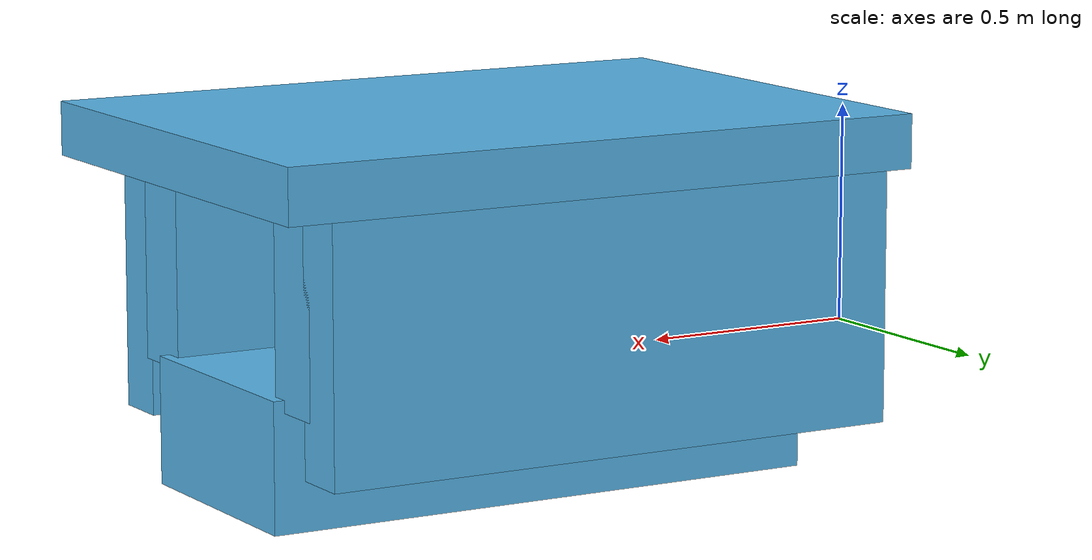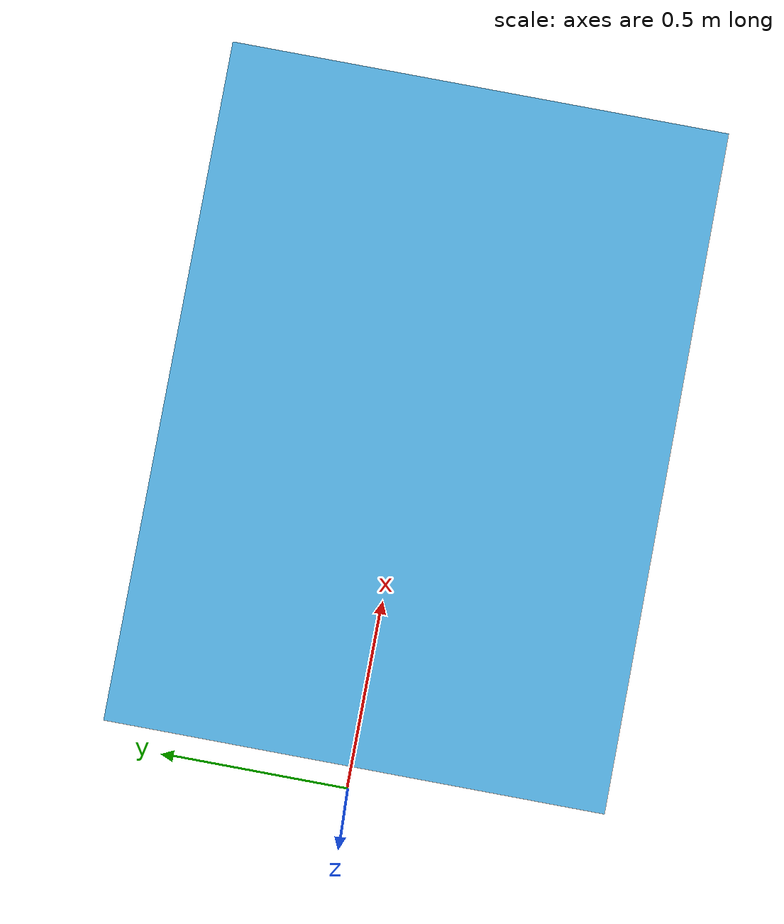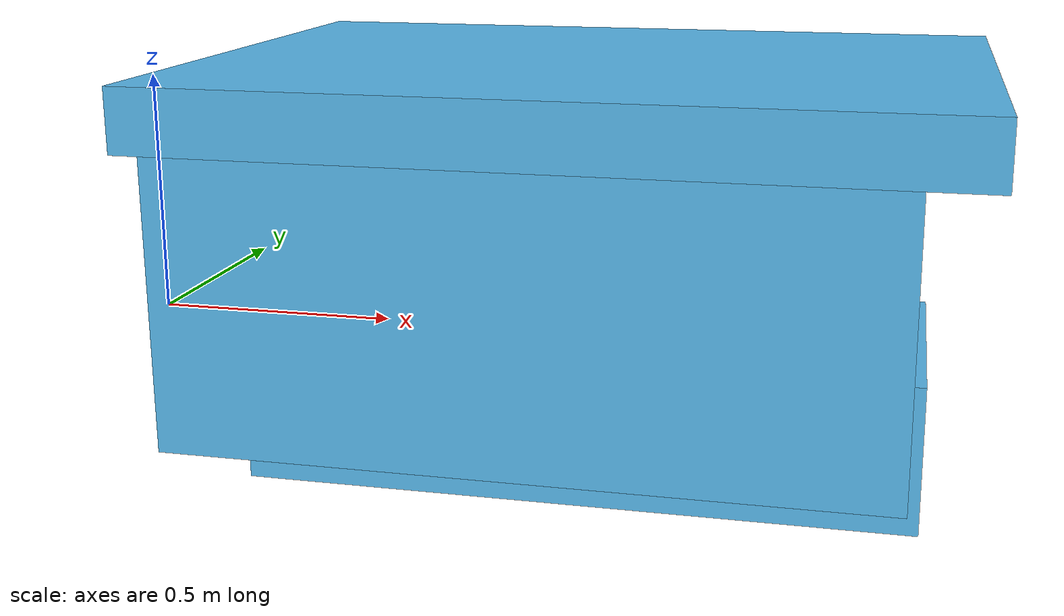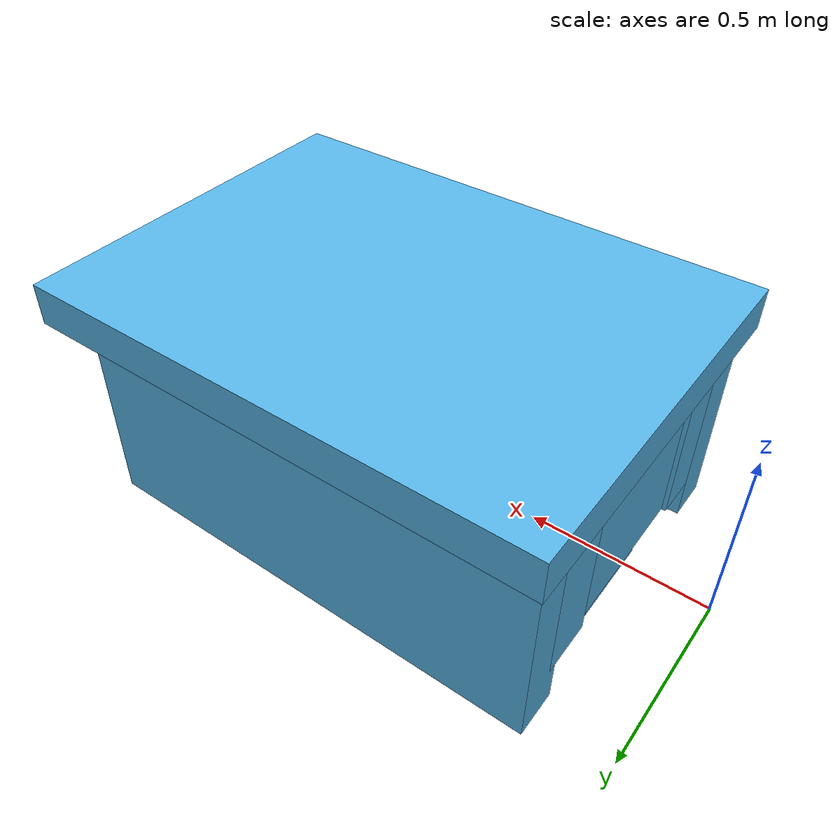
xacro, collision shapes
<?xml version="1.0"?>
<robot xmlns:xacro="http://ros.org/wiki/xacro" name="wam-v">
  <!-- Macro for creating the main collisions as simple shapes. -->
  <xacro:macro name="main_collisions" params="prefix reflect:=1">

    <!-- Top part -->
    <collision name="topPart">
      <origin xyz="0.95 0.0 0.5"/>
      <geometry>
        <box size="1.5 1.1 0.12"/>
      </geometry>
    </collision>

    <!-- External sides -->
    <collision name="${prefix}_externalSide">
      <origin xyz="${0.95-0.05} ${((0.5-0.06875)*reflect)} ${0.5-0.29}"/>
      <geometry>
        <box size="1.35 0.13 0.67"/>
      </geometry>
    </collision>

    <!-- Internal sides -->
    <collision name="$prefix_internalSide">
      <origin xyz="${0.95-0.05} ${((0.446875-0.06875-0.065)*reflect)} ${0.5-0.25}"/>
      <geometry>
        <box size="1.35 0.15625 0.5"/>
      </geometry>
    </collision>

   <!-- Center part -->
    <collision name="centerPart">
      <origin xyz="${0.95-0.6125} 0.0 ${0.5-0.25}"/>
      <geometry>
        <box size="0.20 0.5 0.5"/>
      </geometry>
    </collision>

   <!-- Botoom part -->
    <collision name="bottomPart">
      <origin xyz="0.95 0.0 ${0.5-0.25-0.365}"/>
      <geometry>
        <box size="1.3 0.55 0.285"/>
      </geometry>
    </collision>

  </xacro:macro>

  <link name="base_link">
  </link>

  <joint name="dummy_joint" type = "fixed">
    <parent link="base_link"/>
    <child link="dummy_link"/>
  </joint>

  <!-- Basic model of the 16' WAM-V USV -->
  <link name="dummy_link">
    <visual>
      <origin xyz="0 0.085 -0.45" rpy="0 0 0" />
      <geometry>
        <mesh filename="package://wamv_description/models/WAM-V-Base/mesh/robot.stl"/>
      </geometry>
    </visual>

    <!-- Left base collisions -->
    <xacro:main_collisions prefix="left" reflect="1" />

    <!-- Right side collisions -->
    <xacro:main_collisions prefix="right" reflect="-1" />

    <inertial>
      <!-- From WAM-V spec sheet -->
      <mass value="180"/>
      <inertia ixx="120.0" ixy="0.0" ixz="0.0" iyy="393.0" iyz="0.0" izz="446.0"/> <!-- ixx="120.0" ixy="0.0" ixz="0.0" iyy="393" iyz="0.0" izz="446.0" -->
    </inertial>

  </link>

</robot>
